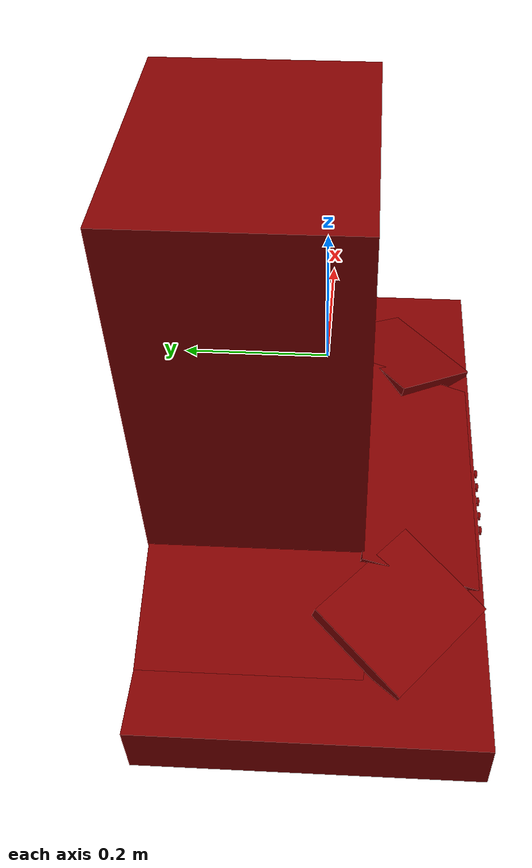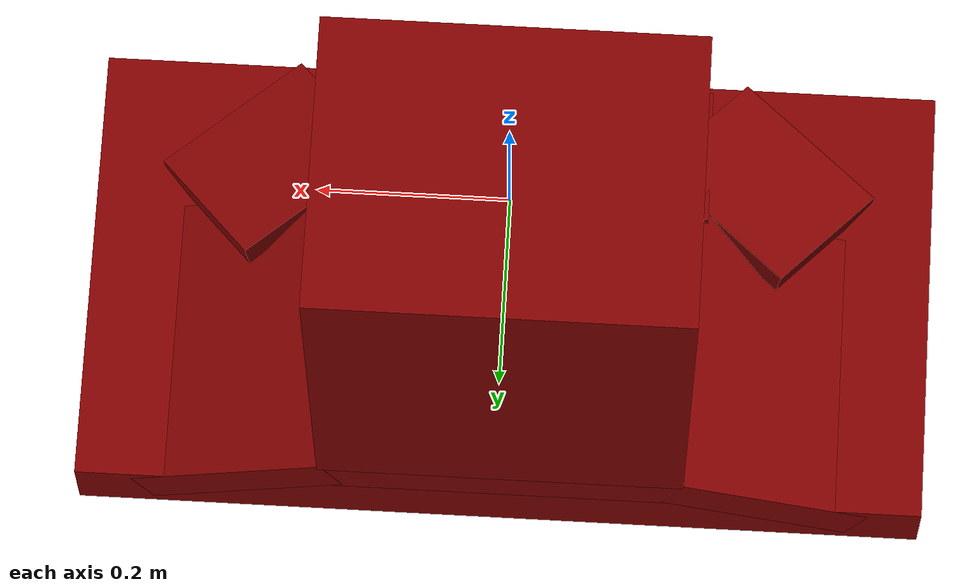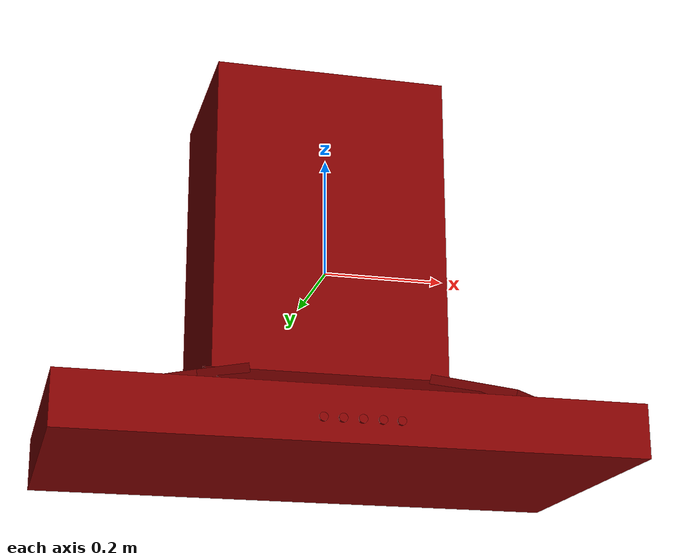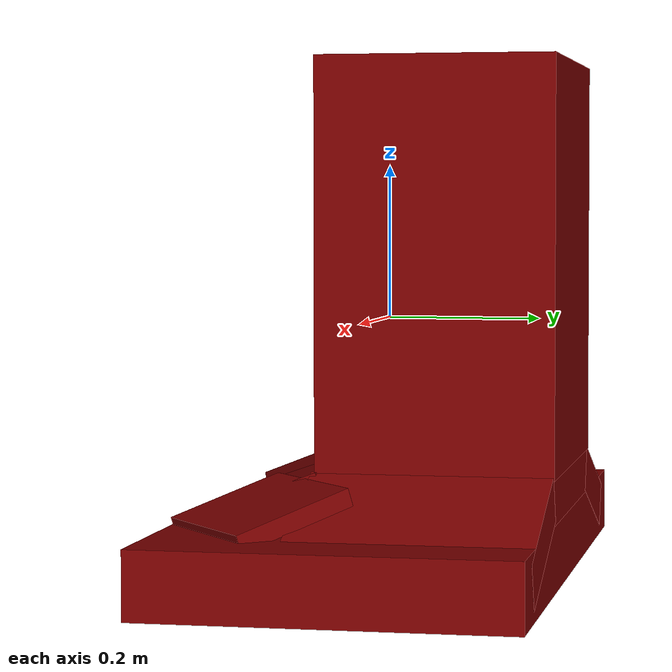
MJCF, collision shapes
<?xml version='1.0' encoding='UTF-8'?>
<mujoco model="model">
  <compiler angle="radian"/>
  <asset>
    <mesh file="visuals/Body001.obj" name="Body001_vis"/>
    <mesh file="visuals/Button001.obj" name="Button001_vis"/>
    <mesh file="visuals/Button002.obj" name="Button002_vis"/>
    <mesh file="visuals/Button003.obj" name="Button003_vis"/>
    <mesh file="visuals/Button004.obj" name="Button004_vis"/>
    <mesh file="visuals/Button005.obj" name="Button005_vis"/>
    <texture file="visuals/T_BC001.png" name="Body001_material" type="2d"/>
    <material name="Body001_material" rgba="1 1 1 1.0" texture="Body001_material" shininess="0.141421377658844" specular="0.3103448502657381"/>
    <texture file="visuals/T_BC001.png" name="Button001_material" type="2d"/>
    <material name="Button001_material" rgba="1 1 1 1.0" texture="Button001_material" shininess="0.141421377658844" specular="0.3103448502657381"/>
    <texture file="visuals/T_BC001.png" name="Button002_material" type="2d"/>
    <material name="Button002_material" rgba="1 1 1 1.0" texture="Button002_material" shininess="0.141421377658844" specular="0.3103448502657381"/>
    <texture file="visuals/T_BC001.png" name="Button003_material" type="2d"/>
    <material name="Button003_material" rgba="1 1 1 1.0" texture="Button003_material" shininess="0.141421377658844" specular="0.3103448502657381"/>
    <texture file="visuals/T_BC001.png" name="Button004_material" type="2d"/>
    <material name="Button004_material" rgba="1 1 1 1.0" texture="Button004_material" shininess="0.141421377658844" specular="0.3103448502657381"/>
    <texture file="visuals/T_BC001.png" name="Button005_material" type="2d"/>
    <material name="Button005_material" rgba="1 1 1 1.0" texture="Button005_material" shininess="0.141421377658844" specular="0.3103448502657381"/>
  </asset>
  <default>
    <default class="visual">
      <geom conaffinity="0" contype="0" group="1" type="mesh"/>
    </default>
    <default class="collision">
      <geom group="0" rgba="0.5 0 0 0.5"/>
    </default>
    <default class="spawn">
      <geom group="0" rgba="1 1 1 0.5" contype="0" conaffinity="0"/>
      <site group="0" rgba="1 1 1 0.5"/>
    </default>
    <default class="region">
      <geom group="1" conaffinity="0" contype="0" rgba="0 1 0 0"/>
    </default>
  </default>
  <worldbody>
    <body>
      <body name="object">
        <geom mesh="Body001_vis" type="mesh" solimp="0.998 0.998 0.001" solref="0.001 1" density="100" friction="0.95 0.3 0.1" class="visual" material="Body001_material"/>
        <geom class="collision" type="box" pos="-0.005322 0.209734 -0.263926" size="0.1969054490327835 0.03255169093608856 0.07155102491378784" quat="1.0 0.0 0.0 0.0"/>
        <geom class="collision" type="box" pos="-0.002692 0.091884 0.072492" size="0.19389010965824127 0.15213270485401154 0.2645517587661743" quat="1.0 0.0 0.0 0.0"/>
        <geom class="collision" type="box" pos="-0.266356 -0.112401 -0.229225" size="0.07921233773231506 0.09346246719360352 0.011781295761466026" quat="0.8980534672737122 0.06367959827184677 -0.1376676708459854 0.4129073917865753"/>
        <geom class="collision" type="box" pos="0.279090 0.088956 -0.254886" size="0.10943561792373657 0.15356147289276123 0.031185979023575783" quat="0.9835095405578613 0.0 0.18085628747940063 0.0"/>
        <geom class="collision" type="box" pos="-0.005668 -0.138557 -0.230124" size="0.09099265187978745 0.204146146774292 0.011781294830143452" quat="0.6954463124275208 0.12788470089435577 0.12788470089435577 -0.695446252822876"/>
        <geom class="collision" type="box" pos="0.000000 0.005261 -0.294032" size="0.45201554894447327 0.23702488839626312 0.04301111400127411" quat="1.0 0.0 0.0 0.0"/>
        <geom class="collision" type="box" pos="-0.285154 0.088956 -0.256296" size="0.10632427036762238 0.15356147289276123 0.03151038661599159" quat="0.9835095405578613 0.0 -0.18085625767707825 0.0"/>
        <geom class="collision" type="box" pos="0.260162 -0.112401 -0.229225" size="0.07921233773231506 0.09346247464418411 0.011781295761466026" quat="0.8980534076690674 0.06367965787649155 0.1376677006483078 -0.41290754079818726"/>
        <body name="Button001">
          <joint axis="0.0 1.0 0.0" pos="-0.061518 -0.242139 -0.302747" limited="true" name="Button001_joint" range="0.0 0.0015" type="slide" damping="1" frictionloss="1" armature=".01" stiffness="0.05"/>
          <geom mesh="Button001_vis" type="mesh" solimp="0.998 0.998 0.001" solref="0.001 1" density="100" friction="0.95 0.3 0.1" class="visual" material="Button001_material"/>
          <geom class="collision" type="cylinder" pos="-0.061518 -0.242100 -0.302747" size="0.006608946248888969 0.0019673604983836412" quat="0.7071068286895752 0.7071067690849304 0.0 0.0"/>
        </body>
        <body name="Button002">
          <joint axis="0.0 1.0 0.0" pos="-0.032195 -0.242139 -0.302747" limited="true" name="Button002_joint" range="0.0 0.0015" type="slide" damping="1" frictionloss="1" armature=".01" stiffness="0.05"/>
          <geom mesh="Button002_vis" type="mesh" solimp="0.998 0.998 0.001" solref="0.001 1" density="100" friction="0.95 0.3 0.1" class="visual" material="Button002_material"/>
          <geom class="collision" type="cylinder" pos="-0.032231 -0.242100 -0.302747" size="0.006608946248888969 0.0019673604983836412" quat="0.7071068286895752 0.7071067690849304 0.0 0.0"/>
        </body>
        <body name="Button003">
          <joint axis="0.0 1.0 0.0" pos="-0.002321 -0.242139 -0.302747" limited="true" name="Button003_joint" range="0.0 0.0015" type="slide" damping="1" frictionloss="1" armature=".01" stiffness="0.05"/>
          <geom mesh="Button003_vis" type="mesh" solimp="0.998 0.998 0.001" solref="0.001 1" density="100" friction="0.95 0.3 0.1" class="visual" material="Button003_material"/>
          <geom class="collision" type="cylinder" pos="-0.002442 -0.242100 -0.302747" size="0.006608946248888969 0.0019673604983836412" quat="0.7071068286895752 0.7071067690849304 0.0 0.0"/>
        </body>
        <body name="Button004">
          <joint axis="0.0 1.0 0.0" pos="0.027647 -0.242139 -0.302747" limited="true" name="Button004_joint" range="0.0 0.0015" type="slide" damping="1" frictionloss="1" armature=".01" stiffness="0.05"/>
          <geom mesh="Button004_vis" type="mesh" solimp="0.998 0.998 0.001" solref="0.001 1" density="100" friction="0.95 0.3 0.1" class="visual" material="Button004_material"/>
          <geom class="collision" type="cylinder" pos="0.027611 -0.242100 -0.302747" size="0.006608946248888969 0.0019673604983836412" quat="0.7071068286895752 0.7071067690849304 0.0 0.0"/>
        </body>
        <body name="Button005">
          <joint axis="0.0 1.0 0.0" pos="0.056070 -0.242139 -0.302747" limited="true" name="Button005_joint" range="0.0 0.0015" type="slide" damping="1" frictionloss="1" armature=".01" stiffness="0.05"/>
          <geom mesh="Button005_vis" type="mesh" solimp="0.998 0.998 0.001" solref="0.001 1" density="100" friction="0.95 0.3 0.1" class="visual" material="Button005_material"/>
          <geom class="collision" type="cylinder" pos="0.056072 -0.242100 -0.302747" size="0.006608946248888969 0.0019673604983836412" quat="0.7071068286895752 0.7071067690849304 0.0 0.0"/>
        </body>
        <geom class="region" name="reg_main" type="box" pos="-0.0006619999999999959 -0.000960500000000003 0.00033400000000000096" size="0.449977 0.2430555 0.335944"/>
      </body>
    </body>
  </worldbody>
  <actuator>
    <motor name="Button001_joint_actuator" joint="Button001_joint" gear="0.5"/>
    <motor name="Button002_joint_actuator" joint="Button002_joint" gear="0.5"/>
    <motor name="Button003_joint_actuator" joint="Button003_joint" gear="0.5"/>
    <motor name="Button004_joint_actuator" joint="Button004_joint" gear="0.5"/>
    <motor name="Button005_joint_actuator" joint="Button005_joint" gear="0.5"/>
  </actuator>
</mujoco>
